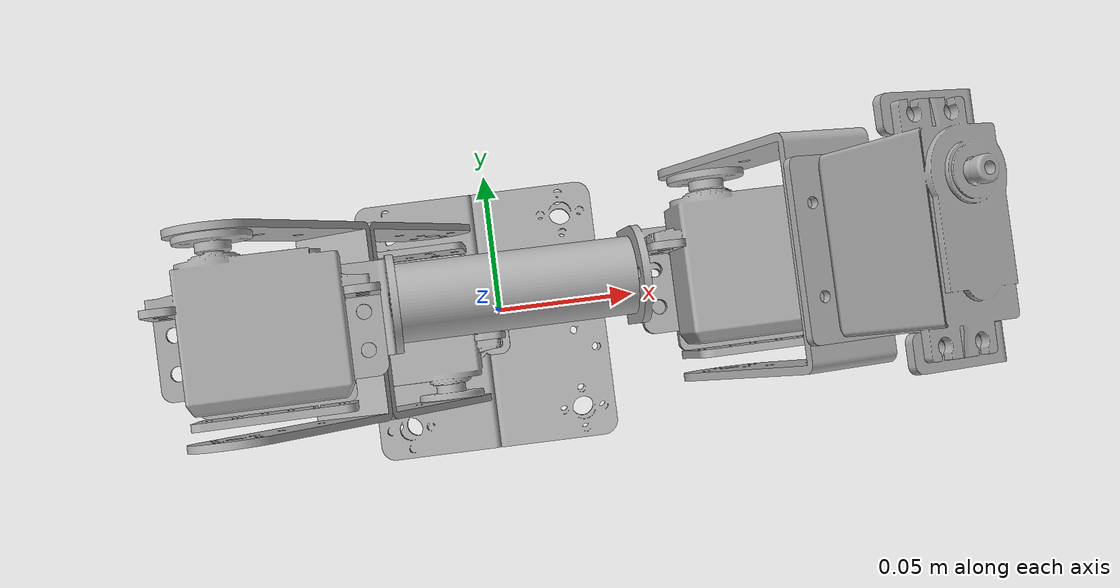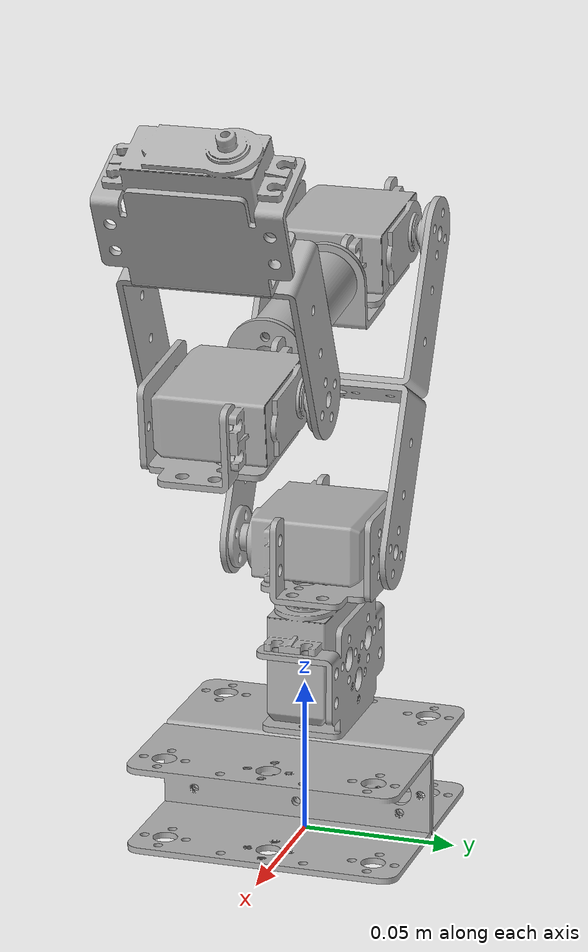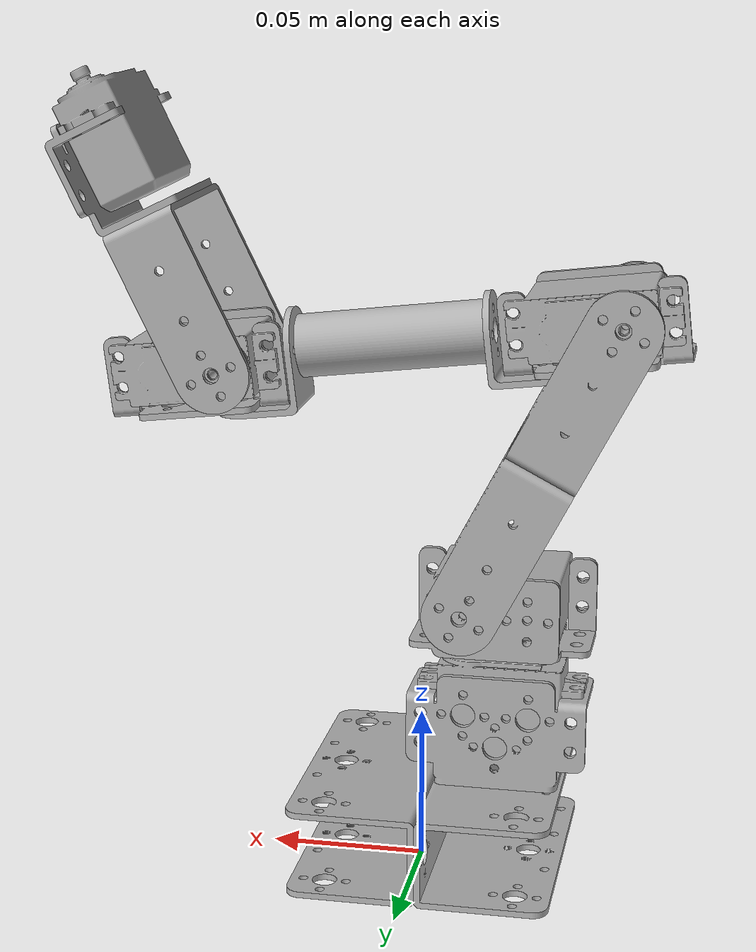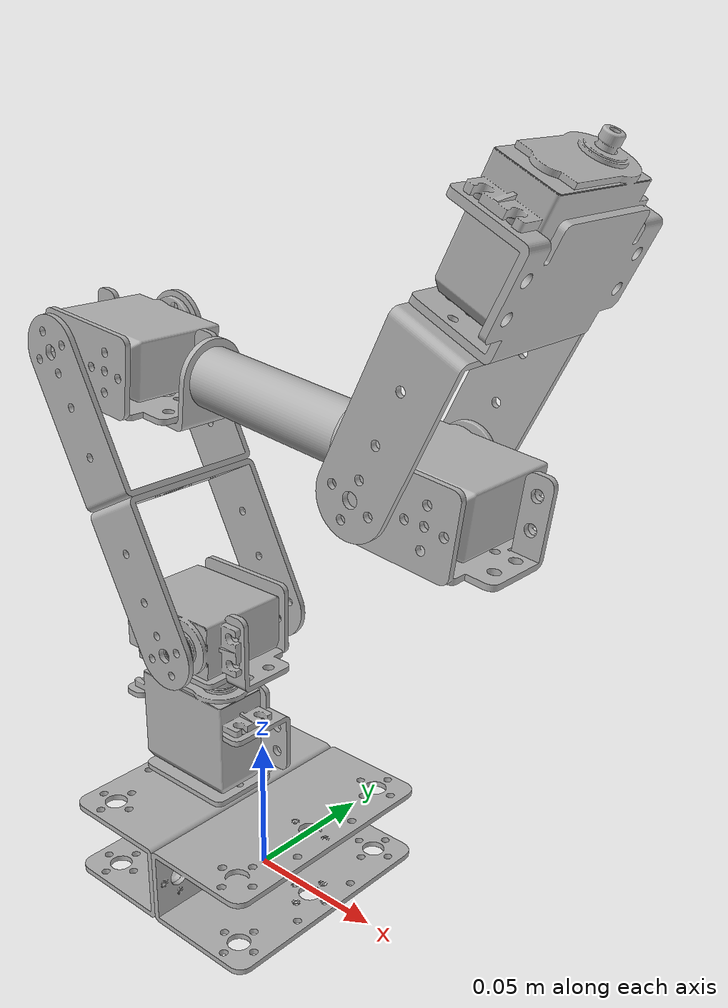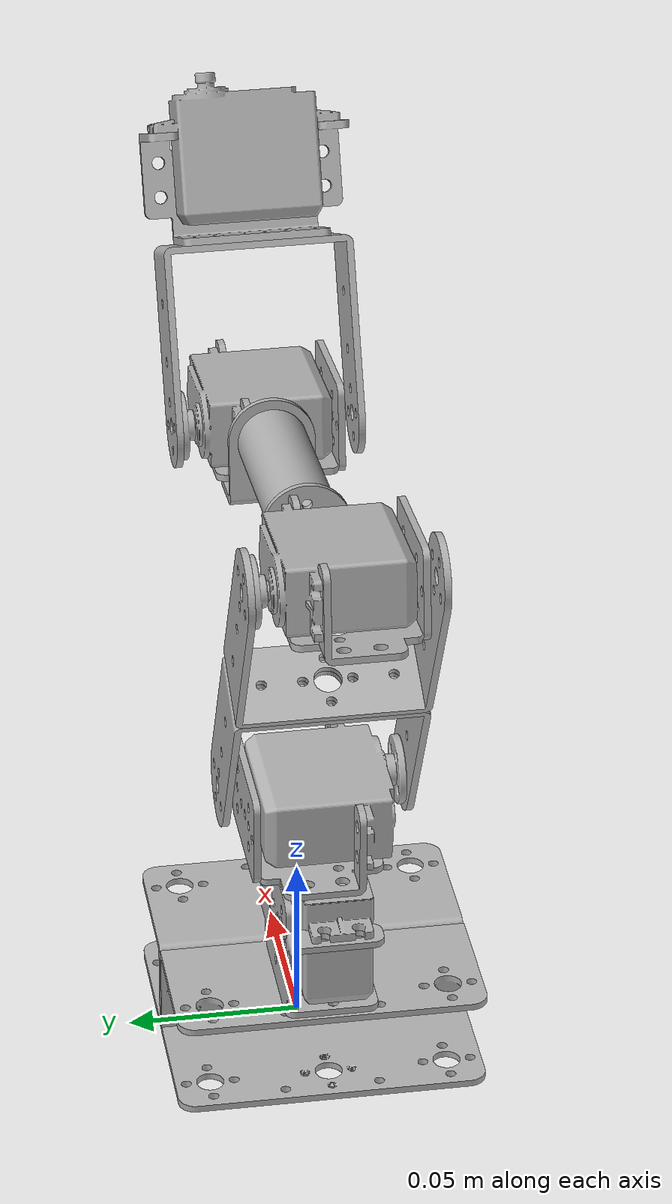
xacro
<?xml version="1.0" ?>
<robot name="arm_v1_0_0" xmlns:xacro="http://www.ros.org/wiki/xacro">

<xacro:include filename="$(find arm_v1_0_0_description)/urdf/materials.xacro" />
<xacro:include filename="$(find arm_v1_0_0_description)/urdf/arm_v1_0_0.trans" />
<xacro:include filename="$(find arm_v1_0_0_description)/urdf/arm_v1_0_0.gazebo" />
<link name="base_link">
  <inertial>
    <origin xyz="-0.020676266562645797 -0.003754322854475935 0.014635270671107498" rpy="0 0 0"/>
    <mass value="0.14063919581430157"/>
    <inertia ixx="0.000115" iyy="4.7e-05" izz="0.000118" ixy="-0.0" iyz="0.0" ixz="0.0"/>
  </inertial>
  <visual>
    <origin xyz="0 0 0" rpy="0 0 0"/>
    <geometry>
      <mesh filename="file://$(find arm_v1_0_0_description)/meshes/base_link.stl" scale="0.001 0.001 0.001"/>
    </geometry>
    <material name="silver"/>
  </visual>
  <collision>
    <origin xyz="0 0 0" rpy="0 0 0"/>
    <geometry>
      <mesh filename="file://$(find arm_v1_0_0_description)/meshes/base_link.stl" scale="0.001 0.001 0.001"/>
    </geometry>
  </collision>
</link>

<link name="servo_bracket_1_1">
  <inertial>
    <origin xyz="0.009927318542898973 0.0069557667176912055 0.01422360483555879" rpy="0 0 0"/>
    <mass value="0.04530894710795126"/>
    <inertia ixx="1e-05" iyy="1.9e-05" izz="1.5e-05" ixy="-0.0" iyz="-1e-06" ixz="0.0"/>
  </inertial>
  <visual>
    <origin xyz="0.035404 0.003757 -0.029135" rpy="0 0 0"/>
    <geometry>
      <mesh filename="file://$(find arm_v1_0_0_description)/meshes/servo_bracket_1_1.stl" scale="0.001 0.001 0.001"/>
    </geometry>
    <material name="silver"/>
  </visual>
  <collision>
    <origin xyz="0.035404 0.003757 -0.029135" rpy="0 0 0"/>
    <geometry>
      <mesh filename="file://$(find arm_v1_0_0_description)/meshes/servo_bracket_1_1.stl" scale="0.001 0.001 0.001"/>
    </geometry>
  </collision>
</link>

<link name="servo_bracket_2_1">
  <inertial>
    <origin xyz="-0.010463997600832591 0.010239144224705492 0.007046126496257632" rpy="0 0 0"/>
    <mass value="0.04532430791212839"/>
    <inertia ixx="1e-05" iyy="1.5e-05" izz="1.9e-05" ixy="0.0" iyz="-1e-06" ixz="-0.0"/>
  </inertial>
  <visual>
    <origin xyz="0.015604 0.004807 -0.076435" rpy="0 0 0"/>
    <geometry>
      <mesh filename="file://$(find arm_v1_0_0_description)/meshes/servo_bracket_2_1.stl" scale="0.001 0.001 0.001"/>
    </geometry>
    <material name="silver"/>
  </visual>
  <collision>
    <origin xyz="0.015604 0.004807 -0.076435" rpy="0 0 0"/>
    <geometry>
      <mesh filename="file://$(find arm_v1_0_0_description)/meshes/servo_bracket_2_1.stl" scale="0.001 0.001 0.001"/>
    </geometry>
  </collision>
</link>

<link name="servo_2_1">
  <inertial>
    <origin xyz="-0.023983499963286234 0.007907442671094781 -0.004949710739595062" rpy="0 0 0"/>
    <mass value="0.23683174363737353"/>
    <inertia ixx="3.5e-05" iyy="4.1e-05" izz="6e-05" ixy="1e-06" iyz="0.0" ixz="-0.0"/>
  </inertial>
  <visual>
    <origin xyz="0.001583 0.010757 -0.096435" rpy="0 0 0"/>
    <geometry>
      <mesh filename="file://$(find arm_v1_0_0_description)/meshes/servo_2_1.stl" scale="0.001 0.001 0.001"/>
    </geometry>
    <material name="silver"/>
  </visual>
  <collision>
    <origin xyz="0.001583 0.010757 -0.096435" rpy="0 0 0"/>
    <geometry>
      <mesh filename="file://$(find arm_v1_0_0_description)/meshes/servo_2_1.stl" scale="0.001 0.001 0.001"/>
    </geometry>
  </collision>
</link>

<link name="servo_horn_2_1">
  <inertial>
    <origin xyz="-4.626079005410483e-06 0.0013388752568662746 2.8816070003767624e-07" rpy="0 0 0"/>
    <mass value="0.00471564142531468"/>
    <inertia ixx="0.0" iyy="0.0" izz="0.0" ixy="-0.0" iyz="0.0" ixz="0.0"/>
  </inertial>
  <visual>
    <origin xyz="0.015423 0.027576 -0.091485" rpy="0 0 0"/>
    <geometry>
      <mesh filename="file://$(find arm_v1_0_0_description)/meshes/servo_horn_2_1.stl" scale="0.001 0.001 0.001"/>
    </geometry>
    <material name="silver"/>
  </visual>
  <collision>
    <origin xyz="0.015423 0.027576 -0.091485" rpy="0 0 0"/>
    <geometry>
      <mesh filename="file://$(find arm_v1_0_0_description)/meshes/servo_horn_2_1.stl" scale="0.001 0.001 0.001"/>
    </geometry>
  </collision>
</link>

<link name="link_1_1_1">
  <inertial>
    <origin xyz="-0.013949004782107668 0.025450156256560143 0.026655214952135006" rpy="0 0 0"/>
    <mass value="0.061597838024402295"/>
    <inertia ixx="5.5e-05" iyy="2.7e-05" izz="4.2e-05" ixy="0.0" iyz="0.0" ixz="9e-06"/>
  </inertial>
  <visual>
    <origin xyz="0.015423 0.027576 -0.091485" rpy="0 0 0"/>
    <geometry>
      <mesh filename="file://$(find arm_v1_0_0_description)/meshes/link_1_1_1.stl" scale="0.001 0.001 0.001"/>
    </geometry>
    <material name="silver"/>
  </visual>
  <collision>
    <origin xyz="0.015423 0.027576 -0.091485" rpy="0 0 0"/>
    <geometry>
      <mesh filename="file://$(find arm_v1_0_0_description)/meshes/link_1_1_1.stl" scale="0.001 0.001 0.001"/>
    </geometry>
  </collision>
</link>

<link name="arm_rod_l_bracket_1_1">
  <inertial>
    <origin xyz="0.01489745471244154 0.005586021073450876 0.00297917854069929" rpy="0 0 0"/>
    <mass value="0.01838931924526891"/>
    <inertia ixx="2e-06" iyy="3e-06" izz="3e-06" ixy="-0.0" iyz="-0.0" ixz="-1e-06"/>
  </inertial>
  <visual>
    <origin xyz="0.044707 0.004969 -0.166342" rpy="0 0 0"/>
    <geometry>
      <mesh filename="file://$(find arm_v1_0_0_description)/meshes/arm_rod_l_bracket_1_1.stl" scale="0.001 0.001 0.001"/>
    </geometry>
    <material name="silver"/>
  </visual>
  <collision>
    <origin xyz="0.044707 0.004969 -0.166342" rpy="0 0 0"/>
    <geometry>
      <mesh filename="file://$(find arm_v1_0_0_description)/meshes/arm_rod_l_bracket_1_1.stl" scale="0.001 0.001 0.001"/>
    </geometry>
  </collision>
</link>

<link name="arm_rod_1">
  <inertial>
    <origin xyz="0.018302 -0.000303 -0.177269" rpy="0 0 0"/>
    <mass value="0.0"/>
    <inertia ixx="0.0" iyy="0.0" izz="0.0" ixy="0.0" iyz="0.0" ixz="0.0"/>
  </inertial>
  <visual>
    <origin xyz="0.018302 -0.000303 -0.177269" rpy="0 0 0"/>
    <geometry>
      <mesh filename="file://$(find arm_v1_0_0_description)/meshes/arm_rod_1.stl" scale="0.001 0.001 0.001"/>
    </geometry>
    <material name="silver"/>
  </visual>
  <collision>
    <origin xyz="0.018302 -0.000303 -0.177269" rpy="0 0 0"/>
    <geometry>
      <mesh filename="file://$(find arm_v1_0_0_description)/meshes/arm_rod_1.stl" scale="0.001 0.001 0.001"/>
    </geometry>
  </collision>
</link>

<link name="arm_rod_l_bracket_2_1">
  <inertial>
    <origin xyz="0.0053130750626880704 1.867913252194943e-05 -0.011795862983278255" rpy="0 0 0"/>
    <mass value="0.018389319245269445"/>
    <inertia ixx="3e-06" iyy="3e-06" izz="2e-06" ixy="-0.0" iyz="0.0" ixz="1e-06"/>
  </inertial>
  <visual>
    <origin xyz="-0.039949 -0.000866 -0.1705" rpy="0 0 0"/>
    <geometry>
      <mesh filename="file://$(find arm_v1_0_0_description)/meshes/arm_rod_l_bracket_2_1.stl" scale="0.001 0.001 0.001"/>
    </geometry>
    <material name="silver"/>
  </visual>
  <collision>
    <origin xyz="-0.039949 -0.000866 -0.1705" rpy="0 0 0"/>
    <geometry>
      <mesh filename="file://$(find arm_v1_0_0_description)/meshes/arm_rod_l_bracket_2_1.stl" scale="0.001 0.001 0.001"/>
    </geometry>
  </collision>
</link>

<link name="servo_1_1">
  <inertial>
    <origin xyz="0.024244543523882247 0.004949661975575003 -0.007992998649351192" rpy="0 0 0"/>
    <mass value="0.23683174363803464"/>
    <inertia ixx="3.5e-05" iyy="6e-05" izz="4.1e-05" ixy="-0.0" iyz="-0.0" ixz="-1e-06"/>
  </inertial>
  <visual>
    <origin xyz="0.049904 0.009757 -0.059635" rpy="0 0 0"/>
    <geometry>
      <mesh filename="file://$(find arm_v1_0_0_description)/meshes/servo_1_1.stl" scale="0.001 0.001 0.001"/>
    </geometry>
    <material name="silver"/>
  </visual>
  <collision>
    <origin xyz="0.049904 0.009757 -0.059635" rpy="0 0 0"/>
    <geometry>
      <mesh filename="file://$(find arm_v1_0_0_description)/meshes/servo_1_1.stl" scale="0.001 0.001 0.001"/>
    </geometry>
  </collision>
</link>

<link name="servo_bracket_4_1">
  <inertial>
    <origin xyz="0.017577484058799137 -0.021622743213807433 0.005265490695920527" rpy="0 0 0"/>
    <mass value="0.04532560096500667"/>
    <inertia ixx="1e-05" iyy="1.5e-05" izz="1.9e-05" ixy="0.0" iyz="1e-06" ixz="1e-06"/>
  </inertial>
  <visual>
    <origin xyz="-0.053785 -0.013437 -0.151006" rpy="0 0 0"/>
    <geometry>
      <mesh filename="file://$(find arm_v1_0_0_description)/meshes/servo_bracket_4_1.stl" scale="0.001 0.001 0.001"/>
    </geometry>
    <material name="silver"/>
  </visual>
  <collision>
    <origin xyz="-0.053785 -0.013437 -0.151006" rpy="0 0 0"/>
    <geometry>
      <mesh filename="file://$(find arm_v1_0_0_description)/meshes/servo_bracket_4_1.stl" scale="0.001 0.001 0.001"/>
    </geometry>
  </collision>
</link>

<link name="servo_4_1">
  <inertial>
    <origin xyz="0.023238609960284977 -0.007810665192291567 -0.007721882131222102" rpy="0 0 0"/>
    <mass value="0.23683174122342118"/>
    <inertia ixx="3.5e-05" iyy="4.1e-05" izz="6e-05" ixy="1e-06" iyz="-0.0" ixz="3e-06"/>
  </inertial>
  <visual>
    <origin xyz="-0.048563 -0.00801 -0.171998" rpy="0 0 0"/>
    <geometry>
      <mesh filename="file://$(find arm_v1_0_0_description)/meshes/servo_4_1.stl" scale="0.001 0.001 0.001"/>
    </geometry>
    <material name="silver"/>
  </visual>
  <collision>
    <origin xyz="-0.048563 -0.00801 -0.171998" rpy="0 0 0"/>
    <geometry>
      <mesh filename="file://$(find arm_v1_0_0_description)/meshes/servo_4_1.stl" scale="0.001 0.001 0.001"/>
    </geometry>
  </collision>
</link>

<link name="servo_horn_4_1">
  <inertial>
    <origin xyz="2.8544663186261254e-06 -0.0008392857440496643 1.076037611791314e-08" rpy="0 0 0"/>
    <mass value="0.004715641361623459"/>
    <inertia ixx="0.0" iyy="0.0" izz="0.0" ixy="-0.0" iyz="0.0" ixz="0.0"/>
  </inertial>
  <visual>
    <origin xyz="-0.061729 -0.024457 -0.165454" rpy="0 0 0"/>
    <geometry>
      <mesh filename="file://$(find arm_v1_0_0_description)/meshes/servo_horn_4_1.stl" scale="0.001 0.001 0.001"/>
    </geometry>
    <material name="silver"/>
  </visual>
  <collision>
    <origin xyz="-0.061729 -0.024457 -0.165454" rpy="0 0 0"/>
    <geometry>
      <mesh filename="file://$(find arm_v1_0_0_description)/meshes/servo_horn_4_1.stl" scale="0.001 0.001 0.001"/>
    </geometry>
  </collision>
</link>

<link name="link_2_1">
  <inertial>
    <origin xyz="0.013207249499898911 -0.02545321257179389 0.027027772945982298" rpy="0 0 0"/>
    <mass value="0.06159783802440208"/>
    <inertia ixx="5.5e-05" iyy="2.7e-05" izz="4.2e-05" ixy="0.0" iyz="-0.0" ixz="-8e-06"/>
  </inertial>
  <visual>
    <origin xyz="-0.061727 -0.024957 -0.165454" rpy="0 0 0"/>
    <geometry>
      <mesh filename="file://$(find arm_v1_0_0_description)/meshes/link_2_1.stl" scale="0.001 0.001 0.001"/>
    </geometry>
    <material name="silver"/>
  </visual>
  <collision>
    <origin xyz="-0.061727 -0.024957 -0.165454" rpy="0 0 0"/>
    <geometry>
      <mesh filename="file://$(find arm_v1_0_0_description)/meshes/link_2_1.stl" scale="0.001 0.001 0.001"/>
    </geometry>
  </collision>
</link>

<link name="servo_bracket_5_1">
  <inertial>
    <origin xyz="0.013282993748779365 4.732651481729441e-05 0.009517078578337085" rpy="0 0 0"/>
    <mass value="0.05427365864994143"/>
    <inertia ixx="2e-05" iyy="1.2e-05" izz="2e-05" ixy="0.0" iyz="-0.0" ixz="-3e-06"/>
  </inertial>
  <visual>
    <origin xyz="-0.084521 0.000462 -0.212236" rpy="0 0 0"/>
    <geometry>
      <mesh filename="file://$(find arm_v1_0_0_description)/meshes/servo_bracket_5_1.stl" scale="0.001 0.001 0.001"/>
    </geometry>
    <material name="silver"/>
  </visual>
  <collision>
    <origin xyz="-0.084521 0.000462 -0.212236" rpy="0 0 0"/>
    <geometry>
      <mesh filename="file://$(find arm_v1_0_0_description)/meshes/servo_bracket_5_1.stl" scale="0.001 0.001 0.001"/>
    </geometry>
  </collision>
</link>

<link name="servo_5_1">
  <inertial>
    <origin xyz="0.0010493506539222125 -0.023951915067616087 -0.009351993478918352" rpy="0 0 0"/>
    <mass value="0.2368317569141197"/>
    <inertia ixx="5.7e-05" iyy="3.5e-05" izz="4.4e-05" ixy="-0.0" iyz="-1e-06" ixz="-8e-06"/>
  </inertial>
  <visual>
    <origin xyz="-0.094842 -0.023825 -0.243532" rpy="0 0 0"/>
    <geometry>
      <mesh filename="file://$(find arm_v1_0_0_description)/meshes/servo_5_1.stl" scale="0.001 0.001 0.001"/>
    </geometry>
    <material name="silver"/>
  </visual>
  <collision>
    <origin xyz="-0.094842 -0.023825 -0.243532" rpy="0 0 0"/>
    <geometry>
      <mesh filename="file://$(find arm_v1_0_0_description)/meshes/servo_5_1.stl" scale="0.001 0.001 0.001"/>
    </geometry>
  </collision>
</link>

<link name="base_plate_1">
  <inertial>
    <origin xyz="0.016072202681541855 -3.353199228826355e-06 2.7067110736772593e-07" rpy="0 0 0"/>
    <mass value="0.14063919581430204"/>
    <inertia ixx="0.000115" iyy="4.7e-05" izz="0.000118" ixy="-0.0" iyz="-0.0" ixz="-0.0"/>
  </inertial>
  <visual>
    <origin xyz="0.004604 0.003757 -0.014635" rpy="0 0 0"/>
    <geometry>
      <mesh filename="file://$(find arm_v1_0_0_description)/meshes/base_plate_1.stl" scale="0.001 0.001 0.001"/>
    </geometry>
    <material name="silver"/>
  </visual>
  <collision>
    <origin xyz="0.004604 0.003757 -0.014635" rpy="0 0 0"/>
    <geometry>
      <mesh filename="file://$(find arm_v1_0_0_description)/meshes/base_plate_1.stl" scale="0.001 0.001 0.001"/>
    </geometry>
  </collision>
</link>

<link name="servo_horn_1_1">
  <inertial>
    <origin xyz="-3.1996970725756135e-08 -3.3802775360660536e-07 -0.000838866081358039" rpy="0 0 0"/>
    <mass value="0.004715641368409066"/>
    <inertia ixx="0.0" iyy="0.0" izz="0.0" ixy="-0.0" iyz="-0.0" ixz="-0.0"/>
  </inertial>
  <visual>
    <origin xyz="0.015604 0.004807 -0.075935" rpy="0 0 0"/>
    <geometry>
      <mesh filename="file://$(find arm_v1_0_0_description)/meshes/servo_horn_1_1.stl" scale="0.001 0.001 0.001"/>
    </geometry>
    <material name="silver"/>
  </visual>
  <collision>
    <origin xyz="0.015604 0.004807 -0.075935" rpy="0 0 0"/>
    <geometry>
      <mesh filename="file://$(find arm_v1_0_0_description)/meshes/servo_horn_1_1.stl" scale="0.001 0.001 0.001"/>
    </geometry>
  </collision>
</link>

<link name="servo_horn_3_1">
  <inertial>
    <origin xyz="4.804959550394616e-06 -0.0013387889453002448 5.795531221597372e-09" rpy="0 0 0"/>
    <mass value="0.004715641361628089"/>
    <inertia ixx="0.0" iyy="0.0" izz="0.0" ixy="-0.0" iyz="0.0" ixz="-0.0"/>
  </inertial>
  <visual>
    <origin xyz="0.063579 -0.023252 -0.183759" rpy="0 0 0"/>
    <geometry>
      <mesh filename="file://$(find arm_v1_0_0_description)/meshes/servo_horn_3_1.stl" scale="0.001 0.001 0.001"/>
    </geometry>
    <material name="silver"/>
  </visual>
  <collision>
    <origin xyz="0.063579 -0.023252 -0.183759" rpy="0 0 0"/>
    <geometry>
      <mesh filename="file://$(find arm_v1_0_0_description)/meshes/servo_horn_3_1.stl" scale="0.001 0.001 0.001"/>
    </geometry>
  </collision>
</link>

<link name="servo_3_1">
  <inertial>
    <origin xyz="0.010074234343612556 -0.024726600569939583 -0.0011778871310971772" rpy="0 0 0"/>
    <mass value="0.23683174122342587"/>
    <inertia ixx="3.5e-05" iyy="4.1e-05" izz="6e-05" ixy="1e-06" iyz="-0.0" ixz="3e-06"/>
  </inertial>
  <visual>
    <origin xyz="0.063577 -0.022752 -0.183759" rpy="0 0 0"/>
    <geometry>
      <mesh filename="file://$(find arm_v1_0_0_description)/meshes/servo_3_1.stl" scale="0.001 0.001 0.001"/>
    </geometry>
    <material name="silver"/>
  </visual>
  <collision>
    <origin xyz="0.063577 -0.022752 -0.183759" rpy="0 0 0"/>
    <geometry>
      <mesh filename="file://$(find arm_v1_0_0_description)/meshes/servo_3_1.stl" scale="0.001 0.001 0.001"/>
    </geometry>
  </collision>
</link>

<link name="servo_bracket_3_1">
  <inertial>
    <origin xyz="0.0227997519074679 -0.01619567922704236 -0.0157265143039661" rpy="0 0 0"/>
    <mass value="0.04532560096502913"/>
    <inertia ixx="1e-05" iyy="1.5e-05" izz="1.9e-05" ixy="0.0" iyz="1e-06" ixz="1e-06"/>
  </inertial>
  <visual>
    <origin xyz="0.076742 -0.005936 -0.190303" rpy="0 0 0"/>
    <geometry>
      <mesh filename="file://$(find arm_v1_0_0_description)/meshes/servo_bracket_3_1.stl" scale="0.001 0.001 0.001"/>
    </geometry>
    <material name="silver"/>
  </visual>
  <collision>
    <origin xyz="0.076742 -0.005936 -0.190303" rpy="0 0 0"/>
    <geometry>
      <mesh filename="file://$(find arm_v1_0_0_description)/meshes/servo_bracket_3_1.stl" scale="0.001 0.001 0.001"/>
    </geometry>
  </collision>
</link>

<link name="link_1_2_1">
  <inertial>
    <origin xyz="-0.010128816410193031 -3.6070325424792174e-05 0.019482079817774306" rpy="0 0 0"/>
    <mass value="0.061597838024402135"/>
    <inertia ixx="5.5e-05" iyy="2.7e-05" izz="4.2e-05" ixy="0.0" iyz="0.0" ixz="9e-06"/>
  </inertial>
  <visual>
    <origin xyz="0.039501 0.002162 -0.137622" rpy="0 0 0"/>
    <geometry>
      <mesh filename="file://$(find arm_v1_0_0_description)/meshes/link_1_2_1.stl" scale="0.001 0.001 0.001"/>
    </geometry>
    <material name="silver"/>
  </visual>
  <collision>
    <origin xyz="0.039501 0.002162 -0.137622" rpy="0 0 0"/>
    <geometry>
      <mesh filename="file://$(find arm_v1_0_0_description)/meshes/link_1_2_1.stl" scale="0.001 0.001 0.001"/>
    </geometry>
  </collision>
</link>

<joint name="Rigid 83" type="fixed">
  <origin xyz="-0.035404 -0.003757 0.029135" rpy="0 0 0"/>
  <parent link="base_link"/>
  <child link="servo_bracket_1_1"/>
</joint>

<joint name="Rigid 86" type="fixed">
  <origin xyz="0.0 0.0 0.0005" rpy="0 0 0"/>
  <parent link="servo_horn_1_1"/>
  <child link="servo_bracket_2_1"/>
</joint>

<joint name="Rigid 87" type="fixed">
  <origin xyz="0.014021 -0.00595 0.02" rpy="0 0 0"/>
  <parent link="servo_bracket_2_1"/>
  <child link="servo_2_1"/>
</joint>

<joint name="Revolute 88" type="continuous">
  <origin xyz="-0.01384 -0.016819 -0.00495" rpy="0 0 0"/>
  <parent link="servo_2_1"/>
  <child link="servo_horn_2_1"/>
  <axis xyz="-0.003565 0.999994 -0.0"/>
</joint>

<joint name="Rigid 89" type="fixed">
  <origin xyz="0.0 0.0 0.0" rpy="0 0 0"/>
  <parent link="servo_horn_2_1"/>
  <child link="link_1_1_1"/>
</joint>

<joint name="Rigid 94" type="fixed">
  <origin xyz="0.032035 -0.010905 -0.023961" rpy="0 0 0"/>
  <parent link="servo_bracket_3_1"/>
  <child link="arm_rod_l_bracket_1_1"/>
</joint>

<joint name="Rigid 96" type="fixed">
  <origin xyz="0.026405 0.005272 0.010927" rpy="0 0 0"/>
  <parent link="arm_rod_l_bracket_1_1"/>
  <child link="arm_rod_1"/>
</joint>

<joint name="Rigid 97" type="fixed">
  <origin xyz="0.058251 0.000563 -0.006769" rpy="0 0 0"/>
  <parent link="arm_rod_1"/>
  <child link="arm_rod_l_bracket_2_1"/>
</joint>

<joint name="Rigid 98" type="fixed">
  <origin xyz="-0.0145 -0.006 0.0305" rpy="0 0 0"/>
  <parent link="servo_bracket_1_1"/>
  <child link="servo_1_1"/>
</joint>

<joint name="Rigid 99" type="fixed">
  <origin xyz="0.013836 0.012571 -0.019494" rpy="0 0 0"/>
  <parent link="arm_rod_l_bracket_2_1"/>
  <child link="servo_bracket_4_1"/>
</joint>

<joint name="Rigid 100" type="fixed">
  <origin xyz="-0.005222 -0.005427 0.020992" rpy="0 0 0"/>
  <parent link="servo_bracket_4_1"/>
  <child link="servo_4_1"/>
</joint>

<joint name="Revolute 101" type="continuous">
  <origin xyz="0.013166 0.016447 -0.006544" rpy="0 0 0"/>
  <parent link="servo_4_1"/>
  <child link="servo_horn_4_1"/>
  <axis xyz="-0.003565 0.999994 -0.0"/>
</joint>

<joint name="Rigid 102" type="fixed">
  <origin xyz="-2e-06 0.0005 0.0" rpy="0 0 0"/>
  <parent link="servo_horn_4_1"/>
  <child link="link_2_1"/>
</joint>

<joint name="Rigid 103" type="fixed">
  <origin xyz="0.022794 -0.025419 0.046782" rpy="0 0 0"/>
  <parent link="link_2_1"/>
  <child link="servo_bracket_5_1"/>
</joint>

<joint name="Rigid 104" type="fixed">
  <origin xyz="0.010321 0.024287 0.031296" rpy="0 0 0"/>
  <parent link="servo_bracket_5_1"/>
  <child link="servo_5_1"/>
</joint>

<joint name="Rigid 105" type="fixed">
  <origin xyz="-0.004604 -0.003757 0.014635" rpy="0 0 0"/>
  <parent link="base_link"/>
  <child link="base_plate_1"/>
</joint>

<joint name="Revolute 106" type="continuous">
  <origin xyz="0.0343 0.00495 0.0163" rpy="0 0 0"/>
  <parent link="servo_1_1"/>
  <child link="servo_horn_1_1"/>
  <axis xyz="-0.0 0.0 -1.0"/>
</joint>

<joint name="Rigid 111" type="fixed">
  <origin xyz="-0.024078 0.025414 0.046137" rpy="0 0 0"/>
  <parent link="link_1_2_1"/>
  <child link="servo_horn_3_1"/>
</joint>

<joint name="Revolute 112" type="continuous">
  <origin xyz="2e-06 -0.0005 0.0" rpy="0 0 0"/>
  <parent link="servo_horn_3_1"/>
  <child link="servo_3_1"/>
  <axis xyz="0.003565 -0.999994 0.0"/>
</joint>

<joint name="Rigid 113" type="fixed">
  <origin xyz="-0.013165 -0.016816 0.006544" rpy="0 0 0"/>
  <parent link="servo_3_1"/>
  <child link="servo_bracket_3_1"/>
</joint>

<joint name="Rigid 115" type="fixed">
  <origin xyz="-0.024078 0.025414 0.046137" rpy="0 0 0"/>
  <parent link="link_1_1_1"/>
  <child link="link_1_2_1"/>
</joint>

</robot>

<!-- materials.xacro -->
<robot name="arm_v1_0_0" xmlns:xacro="http://www.ros.org/wiki/xacro" >

<material name="silver">
  <color rgba="0.700 0.700 0.700 1.000"/>
</material>

</robot>

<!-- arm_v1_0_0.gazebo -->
<robot name="arm_v1_0_0" xmlns:xacro="http://www.ros.org/wiki/xacro" >

<xacro:property name="body_color" value="Gazebo/Silver" />

<gazebo>
  <plugin name="control" filename="libgazebo_ros_control.so"/>
</gazebo>
<gazebo reference="base_link">
  <material>${body_color}</material>
  <mu1>0.2</mu1>
  <mu2>0.2</mu2>
  <self_collide>true</self_collide>
  <gravity>true</gravity>
</gazebo>

<gazebo reference="servo_bracket_1_1">
  <material>${body_color}</material>
  <mu1>0.2</mu1>
  <mu2>0.2</mu2>
  <self_collide>true</self_collide>
</gazebo>

<gazebo reference="servo_bracket_2_1">
  <material>${body_color}</material>
  <mu1>0.2</mu1>
  <mu2>0.2</mu2>
  <self_collide>true</self_collide>
</gazebo>

<gazebo reference="servo_2_1">
  <material>${body_color}</material>
  <mu1>0.2</mu1>
  <mu2>0.2</mu2>
  <self_collide>true</self_collide>
</gazebo>

<gazebo reference="servo_horn_2_1">
  <material>${body_color}</material>
  <mu1>0.2</mu1>
  <mu2>0.2</mu2>
  <self_collide>true</self_collide>
</gazebo>

<gazebo reference="link_1_1_1">
  <material>${body_color}</material>
  <mu1>0.2</mu1>
  <mu2>0.2</mu2>
  <self_collide>true</self_collide>
</gazebo>

<gazebo reference="arm_rod_l_bracket_1_1">
  <material>${body_color}</material>
  <mu1>0.2</mu1>
  <mu2>0.2</mu2>
  <self_collide>true</self_collide>
</gazebo>

<gazebo reference="arm_rod_1">
  <material>${body_color}</material>
  <mu1>0.2</mu1>
  <mu2>0.2</mu2>
  <self_collide>true</self_collide>
</gazebo>

<gazebo reference="arm_rod_l_bracket_2_1">
  <material>${body_color}</material>
  <mu1>0.2</mu1>
  <mu2>0.2</mu2>
  <self_collide>true</self_collide>
</gazebo>

<gazebo reference="servo_1_1">
  <material>${body_color}</material>
  <mu1>0.2</mu1>
  <mu2>0.2</mu2>
  <self_collide>true</self_collide>
</gazebo>

<gazebo reference="servo_bracket_4_1">
  <material>${body_color}</material>
  <mu1>0.2</mu1>
  <mu2>0.2</mu2>
  <self_collide>true</self_collide>
</gazebo>

<gazebo reference="servo_4_1">
  <material>${body_color}</material>
  <mu1>0.2</mu1>
  <mu2>0.2</mu2>
  <self_collide>true</self_collide>
</gazebo>

<gazebo reference="servo_horn_4_1">
  <material>${body_color}</material>
  <mu1>0.2</mu1>
  <mu2>0.2</mu2>
  <self_collide>true</self_collide>
</gazebo>

<gazebo reference="link_2_1">
  <material>${body_color}</material>
  <mu1>0.2</mu1>
  <mu2>0.2</mu2>
  <self_collide>true</self_collide>
</gazebo>

<gazebo reference="servo_bracket_5_1">
  <material>${body_color}</material>
  <mu1>0.2</mu1>
  <mu2>0.2</mu2>
  <self_collide>true</self_collide>
</gazebo>

<gazebo reference="servo_5_1">
  <material>${body_color}</material>
  <mu1>0.2</mu1>
  <mu2>0.2</mu2>
  <self_collide>true</self_collide>
</gazebo>

<gazebo reference="base_plate_1">
  <material>${body_color}</material>
  <mu1>0.2</mu1>
  <mu2>0.2</mu2>
  <self_collide>true</self_collide>
</gazebo>

<gazebo reference="servo_horn_1_1">
  <material>${body_color}</material>
  <mu1>0.2</mu1>
  <mu2>0.2</mu2>
  <self_collide>true</self_collide>
</gazebo>

<gazebo reference="servo_horn_3_1">
  <material>${body_color}</material>
  <mu1>0.2</mu1>
  <mu2>0.2</mu2>
  <self_collide>true</self_collide>
</gazebo>

<gazebo reference="servo_3_1">
  <material>${body_color}</material>
  <mu1>0.2</mu1>
  <mu2>0.2</mu2>
  <self_collide>true</self_collide>
</gazebo>

<gazebo reference="servo_bracket_3_1">
  <material>${body_color}</material>
  <mu1>0.2</mu1>
  <mu2>0.2</mu2>
  <self_collide>true</self_collide>
</gazebo>

<gazebo reference="link_1_2_1">
  <material>${body_color}</material>
  <mu1>0.2</mu1>
  <mu2>0.2</mu2>
  <self_collide>true</self_collide>
</gazebo>

</robot>
